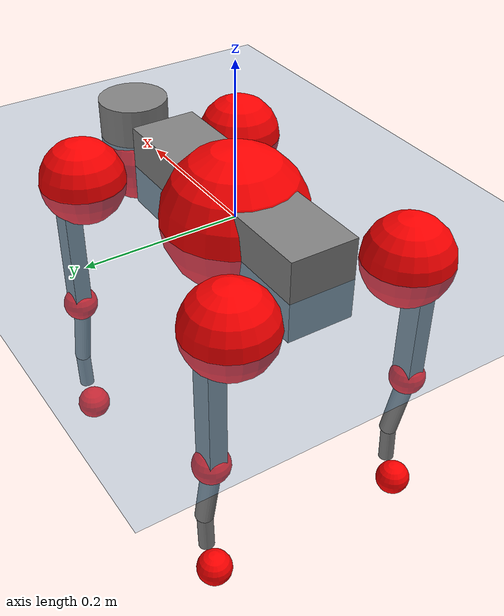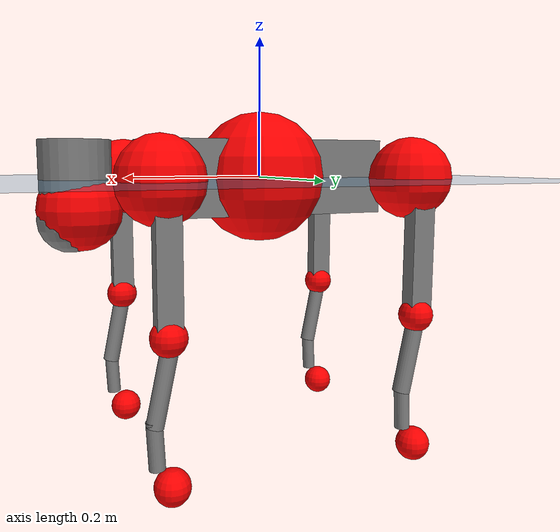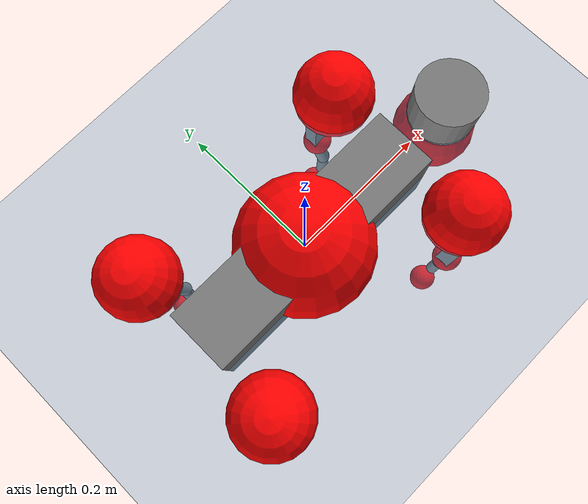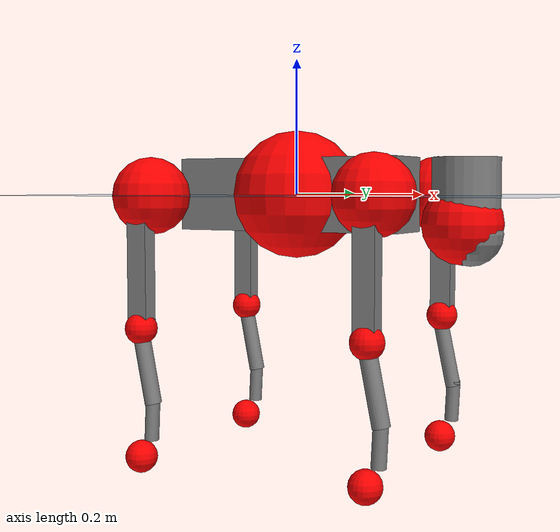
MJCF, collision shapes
<mujoco model="go2">
  <compiler angle="radian" assetdir="assets" balanceinertia="true" inertiafromgeom="false"/>

  <option timestep="0.005" density="1.2" viscosity="2e-05"/>

  <size nkey="1"/>

  <visual>
    <quality shadowsize="8192"/>
    <map shadowclip="0.5"/>
  </visual>

  <default>
    <default class="/">
      <geom contype="0" conaffinity="0" group="1" solref="-1000 -80"/>
      <site size="0.01 0.005 0.005" group="5"/>
      <general forcelimited="true" biastype="affine" gainprm="20" biasprm="0 -20 -0.5"/>
      <default class="go2">
        <joint armature="0.01" damping="0.01" frictionloss="0.2"/>
        <geom condim="1" margin="0.001"/>
        <default class="visual">
          <geom type="mesh" group="2"/>
        </default>
        <default class="collision">
          <geom group="3"/>
          <default class="foot">
            <geom size="0.022 0 0" condim="6" priority="1" friction="0.8 0.02 0.01" solimp="0.015 1 0.022"/>
          </default>
        </default>
        <default class="reward_collision_sphere">
          <geom group="5" rgba="1 0 0 1"/>
        </default>
      </default>
    </default>
  </default>

  <asset>
    <texture type="skybox" colorspace="auto" name="//unnamed_texture_0" builtin="gradient" rgb1="0.95 0.95 0.95" rgb2="0.95 0.95 0.95" width="100" height="600"/>
    <texture type="2d" colorspace="auto" name="texplane" builtin="checker" rgb1="0.345 0.575 0.748" rgb2="0.345 0.575 0.748" markrgb="1 1 1" width="512" height="512"/>
    <material name="MatPlane" class="/" texture="texplane" texuniform="true" texrepeat="2 2" specular="0.9"/>
    <material name="metal" class="/" rgba="0.9 0.95 0.95 1"/>
    <material name="black" class="/" rgba="0 0 0 1"/>
    <material name="white" class="/"/>
    <material name="gray" class="/" rgba="0.671705 0.692426 0.77427 1"/>
    <mesh name="base_0" class="/" file="base_0.obj"/>
    <mesh name="base_1" class="/" file="base_1.obj"/>
    <mesh name="base_2" class="/" file="base_2.obj"/>
    <mesh name="base_3" class="/" file="base_3.obj"/>
    <mesh name="base_4" class="/" file="base_4.obj"/>
    <mesh name="hip_0" class="/" file="hip_0.obj"/>
    <mesh name="hip_1" class="/" file="hip_1.obj"/>
    <mesh name="thigh_0" class="/" file="thigh_0.obj"/>
    <mesh name="thigh_1" class="/" file="thigh_1.obj"/>
    <mesh name="thigh_mirror_0" class="/" file="thigh_mirror_0.obj"/>
    <mesh name="thigh_mirror_1" class="/" file="thigh_mirror_1.obj"/>
    <mesh name="calf_0" class="/" file="calf_0.obj"/>
    <mesh name="calf_1" class="/" file="calf_1.obj"/>
    <mesh name="calf_mirror_0" class="/" file="calf_mirror_0.obj"/>
    <mesh name="calf_mirror_1" class="/" file="calf_mirror_1.obj"/>
    <mesh name="foot" class="/" file="foot.obj"/>
  </asset>

  <worldbody>
    <geom name="floor" class="/" size="100 100 0.125" type="plane" group="0" material="MatPlane"/>
    <light name="toplight_shadow" class="/" pos="0 0 5" dir="0.0990148 0.0990148 -0.990148" type="directional" ambient="0.04 0.04 0.04" diffuse="0.55 0.55 0.55" specular="0.12 0.12 0.12"/>
    <light name="toplight_fill" class="/" pos="0 0 5" dir="0.0990148 0.0990148 -0.990148" type="directional" castshadow="false" ambient="0.04 0.04 0.04" diffuse="0.3 0.3 0.3" specular="0.08 0.08 0.08"/>
    <body name="trunk" childclass="go2" pos="-4.15325e-05 3.50039e-05 3.27736e-05" quat="1 -4.47877e-05 1.82733e-06 0.000140317">
      <inertial pos="0.0196306 0.00140852 -0.00434877" quat="-0.000913089 0.713404 -0.0016532 0.70075" mass="5.98516" diaginertia="0.0745103 0.113609 0.014078"/>
      <joint name="//unnamed_joint_0" type="free" armature="0" damping="0" frictionloss="0"/>
      <geom name="//unnamed_geom_1" class="visual" material="black" mesh="base_0"/>
      <geom name="//unnamed_geom_2" class="visual" material="black" mesh="base_1"/>
      <geom name="//unnamed_geom_3" class="visual" material="black" mesh="base_2"/>
      <geom name="//unnamed_geom_4" class="visual" material="white" mesh="base_3"/>
      <geom name="//unnamed_geom_5" class="visual" material="gray" mesh="base_4"/>
      <geom name="trunk_1" class="collision" size="0.178394 0.0443376 0.0540587" type="box"/>
      <geom name="trunk_2" class="collision" size="0.0474199 0.0426779" pos="0.263796 0 0.00892972" type="cylinder"/>
      <geom name="trunk_3" class="collision" size="0.0445747" pos="0.271201 0 -0.0535783"/>
      <geom name="//unnamed_geom_9" class="reward_collision_sphere" size="0.0948399"/>
      <geom name="//unnamed_geom_10" class="reward_collision_sphere" size="0.0569039" pos="0.259168 0 -0.0401838"/>
      <site name="imu" pos="-0.0278193 0.0040463 0.0331783" size="0.00948399"/>
      <camera name="track" pos="0 -2.05325 0" quat="0.707107 0.707107 0 0" mode="trackcom"/>
      <camera name="ego_camera" pos="0.288787 0 0.0401838" quat="-0.5 -0.5 0.5 0.5"/>
      <body name="FL_hip" pos="0.177913 0.0485371 0.000540653" quat="1 3.10848e-05 -1.34586e-05 9.67867e-05">
        <inertial pos="-0.00584004 0.00231982 0.000695768" quat="0.495239 0.500998 0.505363 0.498345" mass="0.584875" diaginertia="0.000604267 0.000691774 0.000271887"/>
        <joint name="FL_hip_joint" pos="0 0 0" axis="0.999992 -0.00194157 0.00356178" stiffness="0.00113321" range="-1.02906 1.04874" armature="0.00920722" damping="0.00191185" frictionloss="0.182494"/>
        <geom name="//unnamed_geom_11" class="visual" material="metal" mesh="hip_0"/>
        <geom name="//unnamed_geom_12" class="visual" material="gray" mesh="hip_1"/>
        <geom name="//unnamed_geom_13" class="collision" size="0.0436263 0.018968" pos="0 0.0821299 0" quat="0.707107 0.707107 0 0" type="cylinder"/>
        <geom name="//unnamed_geom_14" class="reward_collision_sphere" size="0.0569039" pos="0 0.0718637 0"/>
        <body name="FL_thigh" pos="-0.000564659 0.0973786 0.00171713" quat="1 -7.2627e-05 -2.72864e-06 3.058e-05">
          <inertial pos="-0.00329837 -0.0228955 -0.0282492" quat="0.829244 0.0854721 -0.0198668 0.551956" mass="0.965218" diaginertia="0.00405877 0.00659779 0.000480112"/>
          <joint name="FL_thigh_joint" pos="0 0 0" axis="-2.73559e-05 1 -0.000450769" stiffness="0.00693762" range="-1.55909 3.47158" armature="0.0094579" damping="0.00301484" frictionloss="0.193965"/>
          <geom name="//unnamed_geom_15" class="visual" material="metal" mesh="thigh_0"/>
          <geom name="//unnamed_geom_16" class="visual" material="gray" mesh="thigh_1"/>
          <geom name="//unnamed_geom_17" class="collision" size="0.101004 0.0116179 0.0161228" pos="0 0 -0.0951016" quat="0.707107 0 0.707107 0" type="box"/>
          <body name="FL_calf" pos="-0.000213008 -0.000911538 -0.189773" quat="1 0.000141604 -0.00045013 -0.000589188">
            <inertial pos="0.00564794 -0.000547749 -0.125805" quat="0.71065 0.00148396 -0.00452724 0.70353" mass="0.207723" diaginertia="0.00101396 0.0016448 3.01796e-05"/>
            <joint name="FL_calf_joint" pos="0 0 0" axis="0.004933 0.99998 -0.00395542" stiffness="0.00133424" range="-2.7137 -0.844327" armature="0.00985042" damping="0.0027295" frictionloss="0.189979"/>
            <geom name="//unnamed_geom_18" class="visual" material="gray" mesh="calf_0"/>
            <geom name="//unnamed_geom_19" class="visual" material="black" mesh="calf_1"/>
            <geom name="FL_calf0" class="collision" size="0.0113808 0.0569039" pos="0.0074048 0 -0.0535783" quat="0.994493 0 -0.104807 0" type="cylinder"/>
            <geom name="//unnamed_geom_21" class="collision" size="0.0104324 0.030823" pos="0.018512 0 -0.13216" quat="0.999688 0 0.0249974 0" type="cylinder"/>
            <geom name="//unnamed_geom_22" class="visual" pos="0 0 -0.190203" quat="1 0 0 0" material="black" mesh="foot"/>
            <geom name="FL_foot" class="foot" size="0.01816" pos="-0.0018512 0 -0.190203"/>
            <geom name="//unnamed_geom_24" class="reward_collision_sphere" size="0.02371"/>
            <geom name="//unnamed_geom_25" class="reward_collision_sphere" size="0.02371" pos="-0.0018512 0 -0.190203"/>
            <site name="FL_foot" class="foot" pos="-0.0018512 0 -0.190203" size="0.00948399"/>
          </body>
        </body>
      </body>
      <body name="FR_hip" pos="0.178372 -0.0463597 0.000123733" quat="1 0.000164528 -5.34637e-05 4.22426e-05">
        <inertial pos="-0.00469295 -0.00164739 -0.00057172" quat="0.498294 0.505022 0.498976 0.497673" mass="0.565047" diaginertia="0.000589825 0.00067716 0.00027263"/>
        <joint name="FR_hip_joint" pos="0 0 0" axis="0.999997 0.00102121 -0.00202715" range="-1.04089 1.01968" armature="0.00958774" damping="0.010358" frictionloss="0.193988"/>
        <geom name="//unnamed_geom_26" class="visual" pos="0 1.16431e-09 4.99398e-08" quat="4.63268e-05 1 0 0" material="metal" mesh="hip_0"/>
        <geom name="//unnamed_geom_27" class="visual" pos="0 1.88749e-09 -1.2352e-07" quat="4.63268e-05 1 0 0" material="gray" mesh="hip_1"/>
        <geom name="//unnamed_geom_28" class="collision" size="0.0436263 0.018968" pos="0 -0.0821299 0" quat="0.707107 0.707107 0 0" type="cylinder"/>
        <geom name="//unnamed_geom_29" class="reward_collision_sphere" size="0.0569039" pos="0 -0.0718637 0"/>
        <body name="FR_thigh" pos="0.00230632 -0.0977629 0.00014771" quat="1 4.76093e-05 -0.00030242 -0.000341719">
          <inertial pos="-0.00322745 0.0224987 -0.0291863" quat="0.550901 -0.0206703 0.0850933 0.829964" mass="1.01901" diaginertia="0.0040681 0.00691256 0.000512689"/>
          <joint name="FR_thigh_joint" pos="0 0 0" axis="-0.00822556 -0.999966 -0.000430098" range="-3.45024 1.53971" armature="0.00933987" damping="0.00612804" frictionloss="0.190588"/>
          <geom name="//unnamed_geom_30" class="visual" material="metal" mesh="thigh_mirror_0"/>
          <geom name="//unnamed_geom_31" class="visual" material="gray" mesh="thigh_mirror_1"/>
          <geom name="//unnamed_geom_32" class="collision" size="0.101004 0.0116179 0.0161228" pos="0 0 -0.0951016" quat="0.707107 0 0.707107 0" type="box"/>
          <body name="FR_calf" pos="0.00129224 -0.00106121 -0.190742" quat="1 5.40317e-07 -5.64758e-05 -3.94731e-05">
            <inertial pos="0.00660743 0.000802201 -0.124773" quat="0.704663 -0.00529851 -0.00045883 0.709522" mass="0.200978" diaginertia="0.00100678 0.00168053 3.03812e-05"/>
            <joint name="FR_calf_joint" pos="0 0 0" axis="0.000337382 -0.999948 0.010204" stiffness="0.00168254" range="0.826753 2.7064" armature="0.0094553" damping="0.0131459" frictionloss="0.170383"/>
            <geom name="//unnamed_geom_33" class="visual" material="gray" mesh="calf_mirror_0"/>
            <geom name="//unnamed_geom_34" class="visual" material="black" mesh="calf_mirror_1"/>
            <geom name="FR_calf0" class="collision" size="0.0123292 0.0569039" pos="0.009256 0 -0.0535783" quat="0.995004 0 -0.0998334 0" type="cylinder"/>
            <geom name="//unnamed_geom_36" class="collision" size="0.0104324 0.030823" pos="0.018512 0 -0.13216" quat="0.999688 0 0.0249974 0" type="cylinder"/>
            <geom name="//unnamed_geom_37" class="visual" pos="0 0 -0.190203" quat="1 0 0 0" material="black" mesh="foot"/>
            <geom name="FR_foot" class="foot" size="0.022023" pos="-0.0018512 0 -0.190203"/>
            <geom name="//unnamed_geom_39" class="reward_collision_sphere" size="0.02371"/>
            <geom name="//unnamed_geom_40" class="reward_collision_sphere" size="0.02371" pos="-0.0018512 0 -0.190203"/>
            <site name="FR_foot" class="foot" pos="-0.0018512 0 -0.190203" size="0.00948399"/>
          </body>
        </body>
      </body>
      <body name="RL_hip" pos="-0.179066 0.048701 -0.000162856" quat="1 -5.95345e-05 -3.38432e-05 5.92394e-05">
        <inertial pos="0.00587397 0.0015713 0.000187688" quat="0.506429 0.489516 0.49833 0.50554" mass="0.562781" diaginertia="0.000594211 0.000676246 0.000275773"/>
        <joint name="RL_hip_joint" pos="0 0 0" axis="-0.999885 -0.00901552 0.0121739" range="-1.04864 1.06414" armature="0.00941149" damping="0.0132903" frictionloss="0.181095"/>
        <geom name="//unnamed_geom_41" class="visual" pos="-2.84235e-10 0 -5.57166e-08" quat="4.63268e-05 0 1 0" material="metal" mesh="hip_0"/>
        <geom name="//unnamed_geom_42" class="visual" pos="-4.60779e-10 0 -4.94127e-08" quat="4.63268e-05 0 1 0" material="gray" mesh="hip_1"/>
        <geom name="//unnamed_geom_43" class="collision" size="0.0436263 0.018968" pos="0 0.0821299 0" quat="0.707107 0.707107 0 0" type="cylinder"/>
        <geom name="//unnamed_geom_44" class="reward_collision_sphere" size="0.0569039" pos="0 0.0718637 0"/>
        <body name="RL_thigh" pos="-6.56742e-05 0.0972255 -0.000596058" quat="1 -0.000178604 0.000352554 0.00014123">
          <inertial pos="-0.00257884 -0.0225503 -0.0292277" quat="0.828768 0.0865199 -0.0243829 0.552326" mass="0.993444" diaginertia="0.00410076 0.00685249 0.000502172"/>
          <joint name="RL_thigh_joint" pos="0 0 0" axis="-0.00575547 0.999982 0.00154018" range="-0.52344 4.5366" armature="0.00945341" damping="0.00963187" frictionloss="0.189044"/>
          <geom name="//unnamed_geom_45" class="visual" material="metal" mesh="thigh_0"/>
          <geom name="//unnamed_geom_46" class="visual" material="gray" mesh="thigh_1"/>
          <geom name="//unnamed_geom_47" class="collision" size="0.101004 0.0116179 0.0161228" pos="0 0 -0.0951016" quat="0.707107 0 0.707107 0" type="box"/>
          <body name="RL_calf" pos="0.000934284 -0.000185954 -0.190701" quat="1 0.000410536 2.09476e-05 -9.2773e-05">
            <inertial pos="0.00617038 0.000149403 -0.126099" quat="0.710638 0.00149608 -0.00426189 0.703543" mass="0.208476" diaginertia="0.00104864 0.00174331 3.18318e-05"/>
            <joint name="RL_calf_joint" pos="0 0 0" axis="-0.0120248 0.999924 0.00285173" stiffness="4.38878e-06" range="-2.7196 -0.880796" armature="0.00937007" damping="0" frictionloss="0.18076"/>
            <geom name="//unnamed_geom_48" class="visual" material="gray" mesh="calf_0"/>
            <geom name="//unnamed_geom_49" class="visual" material="black" mesh="calf_1"/>
            <geom name="RL_calf0" class="collision" size="0.0123292 0.0569039" pos="0.009256 0 -0.0535783" quat="0.995004 0 -0.0998334 0" type="cylinder"/>
            <geom name="//unnamed_geom_51" class="collision" size="0.0104324 0.030823" pos="0.018512 0 -0.13216" quat="0.999688 0 0.0249974 0" type="cylinder"/>
            <geom name="//unnamed_geom_52" class="visual" pos="0 0 -0.190203" quat="1 0 0 0" material="black" mesh="foot"/>
            <geom name="RL_foot" class="foot" size="0.0168332" pos="-0.0018512 0 -0.190203"/>
            <geom name="//unnamed_geom_54" class="reward_collision_sphere" size="0.02371"/>
            <geom name="//unnamed_geom_55" class="reward_collision_sphere" size="0.02371" pos="-0.0018512 0 -0.190203"/>
            <site name="RL_foot" class="foot" pos="-0.0018512 0 -0.190203" size="0.00948399"/>
          </body>
        </body>
      </body>
      <body name="RR_hip" pos="-0.178854 -0.048964 -0.0020735" quat="1 0.000554483 8.52206e-05 0.00026317">
        <inertial pos="0.00498327 -0.0029349 0.000911583" quat="0.497074 0.490622 0.505706 0.506427" mass="0.583857" diaginertia="0.000599363 0.000690793 0.000274019"/>
        <joint name="RR_hip_joint" pos="0 0 0" axis="-0.999976 -0.00327459 -0.00607325" stiffness="0.00238678" range="-1.06439 1.0477" armature="0.00893143" damping="0.0125574" frictionloss="0.184746"/>
        <geom name="//unnamed_geom_56" class="visual" pos="2.87732e-10 1.16431e-09 -1.05656e-07" quat="2.14617e-09 4.63268e-05 4.63268e-05 -1" material="metal" mesh="hip_0"/>
        <geom name="//unnamed_geom_57" class="visual" pos="4.52128e-10 1.88749e-09 7.41076e-08" quat="2.14617e-09 4.63268e-05 4.63268e-05 -1" material="gray" mesh="hip_1"/>
        <geom name="//unnamed_geom_58" class="collision" size="0.0436263 0.018968" pos="0 -0.0821299 0" quat="0.707107 0.707107 0 0" type="cylinder"/>
        <geom name="//unnamed_geom_59" class="reward_collision_sphere" size="0.0569039" pos="0 -0.0718637 0"/>
        <body name="RR_thigh" pos="-8.61599e-05 -0.0983876 -0.00309337" quat="1 0.000222304 0.000168912 4.75312e-05">
          <inertial pos="-0.00334851 0.0250758 -0.0300367" quat="0.550763 -0.0181657 0.0854291 0.830079" mass="0.956271" diaginertia="0.00393457 0.00651476 0.00048328"/>
          <joint name="RR_thigh_joint" pos="0 0 0" axis="0.00801265 -0.999968 -0.000317817" range="-4.55836 0.494854" armature="0.0105442" damping="0.0164598" frictionloss="0.183379"/>
          <geom name="//unnamed_geom_60" class="visual" material="metal" mesh="thigh_mirror_0"/>
          <geom name="//unnamed_geom_61" class="visual" material="gray" mesh="thigh_mirror_1"/>
          <geom name="//unnamed_geom_62" class="collision" size="0.101004 0.0116179 0.0161228" pos="0 0 -0.0951016" quat="0.707107 0 0.707107 0" type="box"/>
          <body name="RR_calf" pos="6.89009e-05 -0.00124812 -0.190346" quat="1 0.000176375 3.69147e-05 -7.32974e-05">
            <inertial pos="0.00464758 0.00104962 -0.126384" quat="0.70598 0.00324308 -0.000405622 0.708224" mass="0.204866" diaginertia="0.00102727 0.00170176 3.13254e-05"/>
            <joint name="RR_calf_joint" pos="0 0 0" axis="0.00126325 -0.999999 0.000461093" stiffness="0.00457512" range="0.849782 2.7495" armature="0.00952272" damping="0.0108822" frictionloss="0.194376"/>
            <geom name="//unnamed_geom_63" class="visual" material="gray" mesh="calf_mirror_0"/>
            <geom name="//unnamed_geom_64" class="visual" material="black" mesh="calf_mirror_1"/>
            <geom name="RR_calf0" class="collision" size="0.0123292 0.0569039" pos="0.009256 0 -0.0535783" quat="0.995004 0 -0.0998334 0" type="cylinder"/>
            <geom name="//unnamed_geom_66" class="collision" size="0.0104324 0.030823" pos="0.018512 0 -0.13216" quat="0.999688 0 0.0249974 0" type="cylinder"/>
            <geom name="//unnamed_geom_67" class="visual" pos="0 0 -0.190203" quat="1 0 0 0" material="black" mesh="foot"/>
            <geom name="RR_foot" class="foot" size="0.0209594" pos="-0.0018512 0 -0.190203"/>
            <geom name="//unnamed_geom_69" class="reward_collision_sphere" size="0.02371"/>
            <geom name="//unnamed_geom_70" class="reward_collision_sphere" size="0.02371" pos="-0.0018512 0 -0.190203"/>
            <site name="RR_foot" class="foot" pos="-0.0018512 0 -0.190203" size="0.00948399"/>
          </body>
        </body>
      </body>
    </body>
  </worldbody>

  <contact>
    <pair class="/" geom1="floor" geom2="FL_foot" name="//unnamed_contact_0"/>
    <pair class="/" geom1="floor" geom2="FR_foot" name="//unnamed_contact_1"/>
    <pair class="/" geom1="floor" geom2="RL_foot" name="//unnamed_contact_2"/>
    <pair class="/" geom1="floor" geom2="RR_foot" name="//unnamed_contact_3"/>
  </contact>

  <actuator>
    <general name="FL_hip" class="/" joint="FL_hip_joint" forcerange="-23.0531 23.0531" gainprm="19.8246" biasprm="0 -19.8246 -0.463014"/>
    <general name="FL_thigh" class="/" joint="FL_thigh_joint" forcerange="-20.8271 20.8271" gainprm="19.8246" biasprm="0 -19.8246 -0.463014"/>
    <general name="FL_calf" class="/" joint="FL_calf_joint" forcerange="-42.2401 42.2401" gainprm="19.8246" biasprm="0 -19.8246 -0.463014"/>
    <general name="FR_hip" class="/" joint="FR_hip_joint" forcerange="-22.8605 22.8605" gainprm="19.8246" biasprm="0 -19.8246 -0.463014"/>
    <general name="FR_thigh" class="/" joint="FR_thigh_joint" forcerange="-21.6416 21.6416" gainprm="19.8246" biasprm="0 -19.8246 -0.463014"/>
    <general name="FR_calf" class="/" joint="FR_calf_joint" forcerange="-44.4278 44.4278" gainprm="19.8246" biasprm="0 -19.8246 -0.463014"/>
    <general name="RL_hip" class="/" joint="RL_hip_joint" forcerange="-22.2428 22.2428" gainprm="19.8246" biasprm="0 -19.8246 -0.463014"/>
    <general name="RL_thigh" class="/" joint="RL_thigh_joint" forcerange="-22.5452 22.5452" gainprm="19.8246" biasprm="0 -19.8246 -0.463014"/>
    <general name="RL_calf" class="/" joint="RL_calf_joint" forcerange="-44.5121 44.5121" gainprm="19.8246" biasprm="0 -19.8246 -0.463014"/>
    <general name="RR_hip" class="/" joint="RR_hip_joint" forcerange="-20.8398 20.8398" gainprm="19.8246" biasprm="0 -19.8246 -0.463014"/>
    <general name="RR_thigh" class="/" joint="RR_thigh_joint" forcerange="-22.1934 22.1934" gainprm="19.8246" biasprm="0 -19.8246 -0.463014"/>
    <general name="RR_calf" class="/" joint="RR_calf_joint" forcerange="-42.6221 42.6221" gainprm="19.8246" biasprm="0 -19.8246 -0.463014"/>
  </actuator>

  <sensor>
    <gyro site="imu" name="imu_angular_velocity"/>
    <velocimeter site="imu" name="imu_linear_velocity"/>
    <framelinvel objtype="site" objname="FL_foot" name="FL_foot_global_linear_velocity"/>
    <framelinvel objtype="site" objname="FR_foot" name="FR_foot_global_linear_velocity"/>
    <framelinvel objtype="site" objname="RL_foot" name="RL_foot_global_linear_velocity"/>
    <framelinvel objtype="site" objname="RR_foot" name="RR_foot_global_linear_velocity"/>
  </sensor>

  <keyframe>
    <key name="home" qpos="0 0 0.325 1 0 0 0 0.1 0.8 -1.5 -0.1 -0.8 1.5 -0.1 0.8 -1.5 0.1 -0.8 1.5"/>
  </keyframe>
</mujoco>
